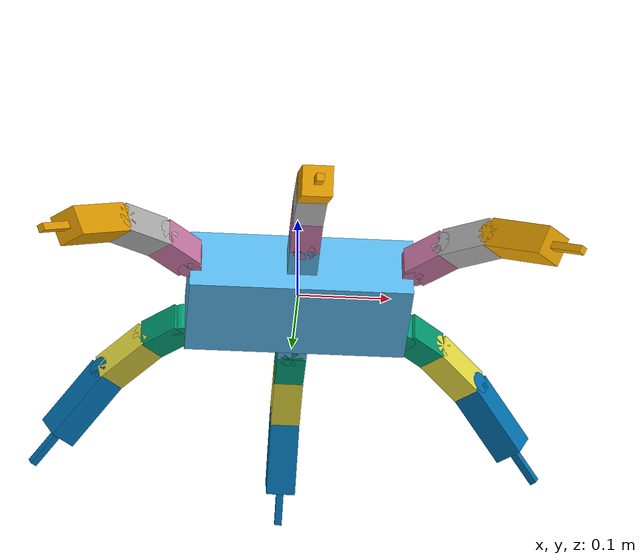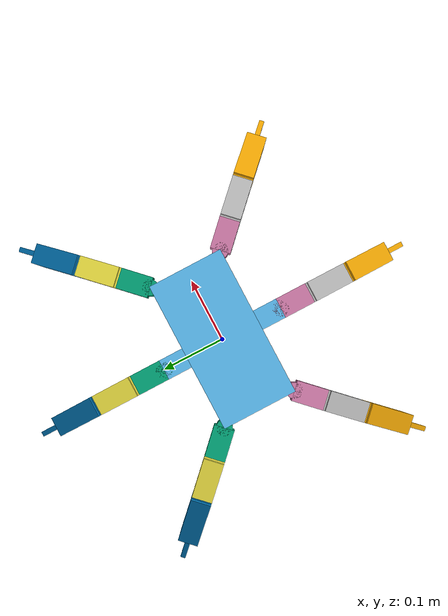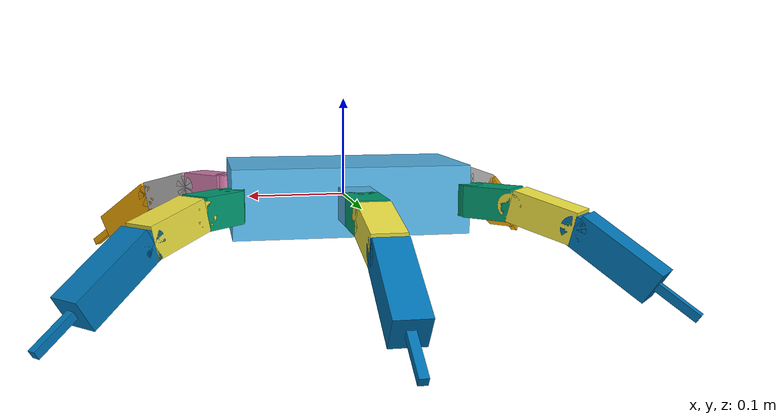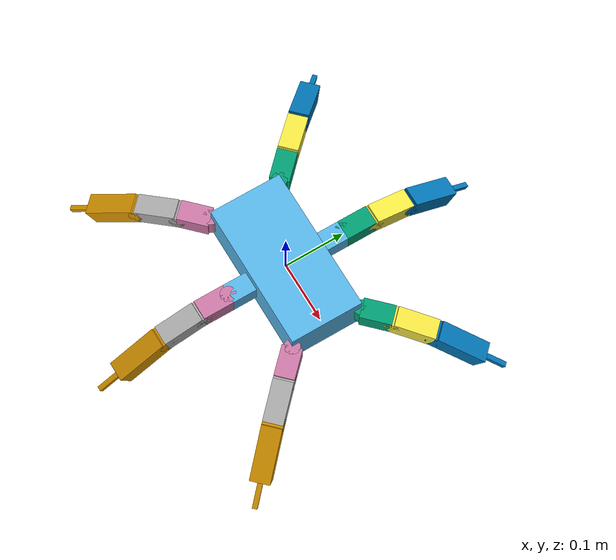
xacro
<?xml version="1.0"?>
<robot name="hexapod" xmlns:xacro="http://ros.org/wiki/xacro">

  <xacro:property name="length" value="0.24" />
  <xacro:property name="width" value="0.12" />
  <xacro:property name="width_mid" value="0.20" />
  <xacro:property name="depth" value="0.07" />
  <!-- Very approx for servo 'joint' measurements. Only used for visuals anyway. -->
  <xacro:property name="servo_joint_length" value="0.032" />
  <xacro:property name="servo_joint_radius" value="0.0125" />
  <!-- Taken from manual measurements rather than CAD files or similar. Seem ok though. -->
  <xacro:property name="coxa_length" value="0.050" />
  <xacro:property name="femur_length" value="0.066" />
  <xacro:property name="tibia_length" value="0.132" />
  <!-- Rough limits. Offsets from manual measurements again. -->
  <!-- TODO update limits. -->
  <xacro:property name="joint_1_lower_limit" value="${-pi}" />
  <xacro:property name="joint_1_upper_limit" value="${pi}" />
  <xacro:property name="joint_2_lower_limit" value="${-pi}" />
  <xacro:property name="joint_2_upper_limit" value="${pi}" />
  <xacro:property name="joint_2_offset" value="${14.0*pi/180.0}" />
  <xacro:property name="joint_3_lower_limit" value="${-pi}" />
  <xacro:property name="joint_3_upper_limit" value="${pi}" />
  <xacro:property name="joint_3_offset" value="${32.0*pi/180.0}" />

  <link name="base_link">
  </link>

  <joint name="base_to_body" type="floating">
    <parent link="base_link"/>
    <child link="body_link"/>
    <origin rpy="0 0 0" xyz="0 0 0"/>
  </joint>

  <link name="body_link">
    <visual>
      <geometry>
        <box size="${length} ${width} ${depth}"/>
      </geometry>
    </visual>
    <visual>
      <geometry>
        <box size="${servo_joint_length} ${width_mid} ${servo_joint_length}"/>
      </geometry>
    </visual>
  </link>

  <xacro:macro name="joint_shape">
        <cylinder length="${servo_joint_length}" radius="${servo_joint_radius}"/>
  </xacro:macro >

  <xacro:macro name="leg" params="row side position base_angle">

  <joint name="leg_${row}_${side}_joint_1" type="revolute">
    <parent link="body_link"/>
    <child link="leg_${row}_${side}_link_1"/>
    <origin rpy="0 0 ${base_angle}" xyz="${position}"/>
    <axis xyz="0 0 1"/>
    <limit lower="${joint_1_lower_limit}" upper="${joint_1_upper_limit}" effort="100" velocity="100" />
  </joint>

  <link name="leg_${row}_${side}_link_1">
    <visual>
      <geometry>
        <xacro:joint_shape />
      </geometry>
    </visual>
    <visual>
      <geometry>
        <box size="${coxa_length} ${servo_joint_length} ${servo_joint_length}"/>
      </geometry>
      <origin rpy="0 0 0" xyz="${coxa_length/2} 0 0"/>
    </visual>
  </link>

  <joint name="leg_${row}_${side}_joint_2" type="revolute">
    <parent link="leg_${row}_${side}_link_1"/>
    <child link="leg_${row}_${side}_link_2"/>
    <origin rpy="${pi/2} ${joint_2_offset} 0" xyz="${coxa_length} 0 0"/>
    <axis xyz="0 0 1"/>
    <limit lower="${joint_2_lower_limit}" upper="${joint_2_upper_limit}" effort="100" velocity="100" />
  </joint>

  <link name="leg_${row}_${side}_link_2">
    <visual>
      <geometry>
        <xacro:joint_shape />
      </geometry>
      <origin rpy="0 0 0" xyz="0 0 0"/>
    </visual>
    <visual>
      <geometry>
        <box size="${femur_length} ${servo_joint_length} ${servo_joint_length}"/>
      </geometry>
      <origin rpy="0 0 0" xyz="${femur_length/2} 0 0"/>
    </visual>
  </link>

  <joint name="leg_${row}_${side}_joint_3" type="revolute">
    <parent link="leg_${row}_${side}_link_2"/>
    <child link="leg_${row}_${side}_link_3"/>
    <origin rpy="0 0 ${-(joint_3_offset-joint_2_offset)}" xyz="${femur_length} 0 0"/>
    <axis xyz="0 0 1"/>
    <limit lower="${joint_3_lower_limit}" upper="${joint_3_upper_limit}" effort="100" velocity="100" />
  </joint>

  <link name="leg_${row}_${side}_link_3">
    <visual>
      <geometry>
        <xacro:joint_shape />
      </geometry>
      <origin rpy="0 0 0" xyz="0 0 0"/>
    </visual>
    <visual>
      <geometry>
        <box size="${tibia_length*2/3} ${servo_joint_length} ${servo_joint_length}"/>
      </geometry>
      <origin rpy="0 0 0" xyz="${tibia_length/3} 0 0"/>
    </visual>
    <visual>
      <geometry>
        <box size="${tibia_length} ${servo_joint_length/4} ${servo_joint_length/4}"/>
      </geometry>
      <origin rpy="0 0 0" xyz="${tibia_length/2} 0 0"/>
    </visual>

  </link>

  <joint name="leg_${row}_${side}_joint_4_fixed" type="fixed">
    <parent link="leg_${row}_${side}_link_3"/>
    <child link="leg_${row}_${side}_foot"/>
    <origin rpy="0 0 0" xyz="${tibia_length} 0 0"/>
  </joint>

  <link name="leg_${row}_${side}_foot">
  </link>

  </xacro:macro>

  <xacro:leg row="row00" side="left" position="${length/2} ${width/2} 0" base_angle="${pi/4}"/>
  <xacro:leg row="row00" side="right" position="${length/2} ${-width/2} 0" base_angle="${-pi/4}"/>
  <xacro:leg row="row01" side="left" position="0 ${width_mid/2} 0" base_angle="${pi/2}"/>
  <xacro:leg row="row01" side="right" position="0 ${-width_mid/2} 0" base_angle="${-pi/2}"/>
  <xacro:leg row="row02" side="left" position="${-length/2} ${width/2} 0" base_angle="${pi*3/4}"/>
  <xacro:leg row="row02" side="right" position="${-length/2} ${-width/2} 0" base_angle="${-pi*3/4}"/>

</robot>
